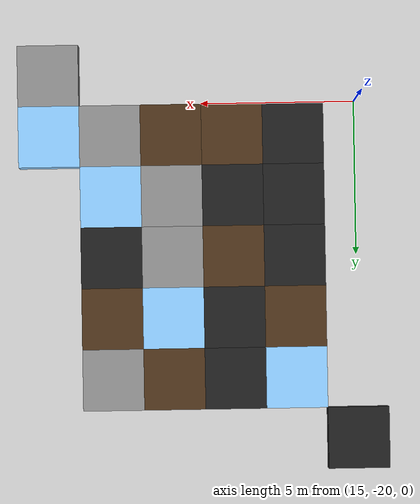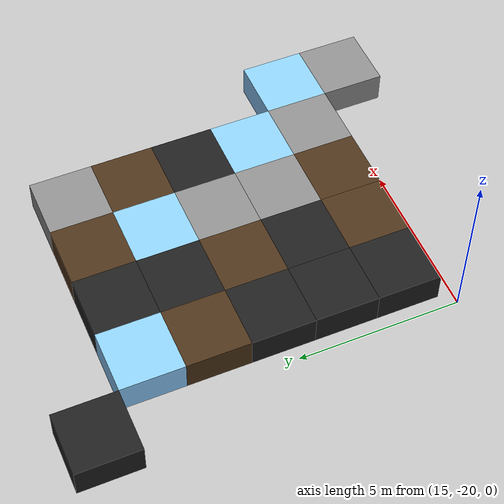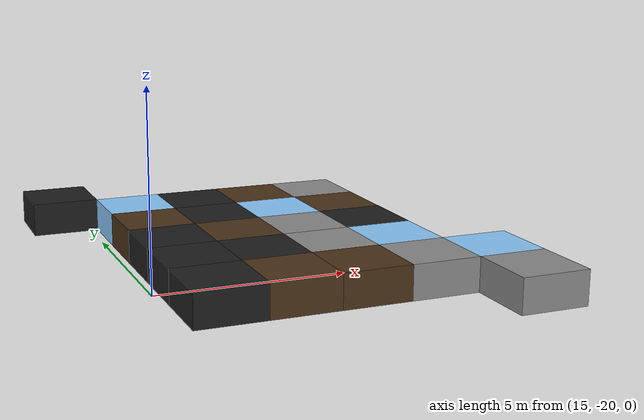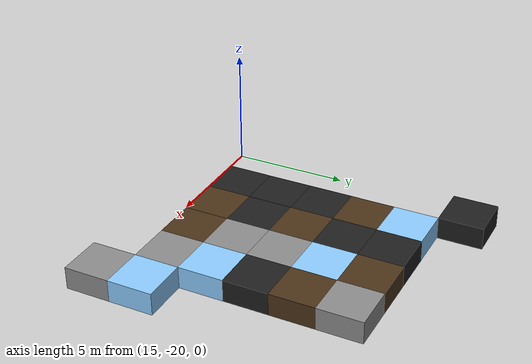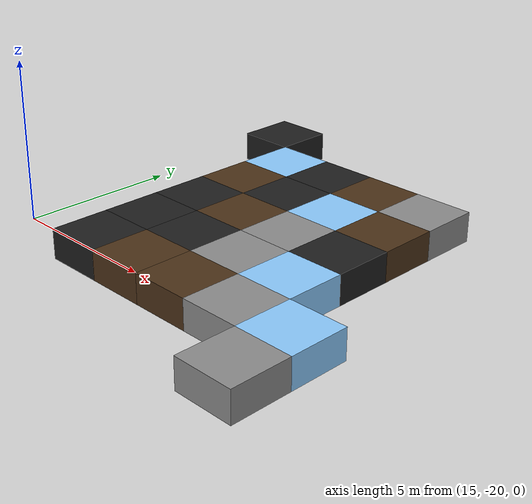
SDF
<sdf version="1.5">
 <world name="squares_example">
  <model name="tile_28_5">
   <static>true</static>
   <pose>25.000 -21.000 -0.500 0 0 0</pose>
   <link name="link">
    <collision name="col">
     <geometry><box><size>2.0 2.0 1.0</size></box></geometry>
     <surface>
      <friction>
       <ode><mu>0.8</mu><mu2>0.3</mu2><fdir1>1 0 0</fdir1><slip1>0.0</slip1><slip2>0.0</slip2></ode>
       <torsional>
        <coefficient>0.03</coefficient>
        <use_patch_radius>false</use_patch_radius>
        <surface_radius>0.12</surface_radius>
        <ode><slip>0.0</slip></ode>
       </torsional>
      </friction>
      <bounce><restitution_coefficient>0.0</restitution_coefficient><threshold>0.1</threshold></bounce>
      <contact>
       <ode><kp>10000000000.0</kp><kd>10000000.0</kd><max_vel>0.01</max_vel><min_depth>0.0</min_depth></ode>
      </contact>
     </surface>
    </collision>
    <visual name="visual">
     <geometry><box><size>2.0 2.0 1.0</size></box></geometry>
     <material>
      <diffuse>0.55 0.55 0.55 1</diffuse>
      <ambient>0 0 0 0</ambient>
      <specular>0 0 0 1</specular>
      <emissive>0 0 0 1</emissive>
     </material>
    </visual>
   </link>
  </model>
  <model name="tile_24_6">
   <static>true</static>
   <pose>17.000 -19.000 -0.500 0 0 0</pose>
   <link name="link">
    <collision name="col">
     <geometry><box><size>2.0 2.0 1.0</size></box></geometry>
     <surface>
      <friction>
       <ode><mu>0.4</mu><mu2>0.15</mu2><fdir1>1 0 0</fdir1><slip1>0.0</slip1><slip2>0.0</slip2></ode>
       <torsional>
        <coefficient>0.03</coefficient>
        <use_patch_radius>false</use_patch_radius>
        <surface_radius>0.12</surface_radius>
        <ode><slip>0.0</slip></ode>
       </torsional>
      </friction>
      <bounce><restitution_coefficient>0.0</restitution_coefficient><threshold>0.1</threshold></bounce>
      <contact>
       <ode><kp>1000000000.0</kp><kd>1000000.0</kd><max_vel>0.01</max_vel><min_depth>0.0</min_depth></ode>
      </contact>
     </surface>
    </collision>
    <visual name="visual">
     <geometry><box><size>2.0 2.0 1.0</size></box></geometry>
     <material>
      <diffuse>0.12 0.12 0.12 1</diffuse>
      <ambient>0 0 0 0</ambient>
      <specular>0 0 0 1</specular>
      <emissive>0 0 0 1</emissive>
     </material>
    </visual>
   </link>
  </model>
  <model name="tile_25_6">
   <static>true</static>
   <pose>19.000 -19.000 -0.500 0 0 0</pose>
   <link name="link">
    <collision name="col">
     <geometry><box><size>2.0 2.0 1.0</size></box></geometry>
     <surface>
      <friction>
       <ode><mu>0.6</mu><mu2>0.4</mu2><fdir1>1 0 0</fdir1><slip1>0.08</slip1><slip2>0.08</slip2></ode>
       <torsional>
        <coefficient>0.03</coefficient>
        <use_patch_radius>false</use_patch_radius>
        <surface_radius>0.12</surface_radius>
        <ode><slip>0.0</slip></ode>
       </torsional>
      </friction>
      <bounce><restitution_coefficient>0.0</restitution_coefficient><threshold>0.1</threshold></bounce>
      <contact>
       <ode><kp>1000000.0</kp><kd>10000.0</kd><max_vel>0.01</max_vel><min_depth>0.0</min_depth></ode>
      </contact>
     </surface>
    </collision>
    <visual name="visual">
     <geometry><box><size>2.0 2.0 1.0</size></box></geometry>
     <material>
      <diffuse>0.30 0.20 0.10 1</diffuse>
      <ambient>0 0 0 0</ambient>
      <specular>0 0 0 1</specular>
      <emissive>0 0 0 1</emissive>
     </material>
    </visual>
   </link>
  </model>
  <model name="tile_26_6">
   <static>true</static>
   <pose>21.000 -19.000 -0.500 0 0 0</pose>
   <link name="link">
    <collision name="col">
     <geometry><box><size>2.0 2.0 1.0</size></box></geometry>
     <surface>
      <friction>
       <ode><mu>0.6</mu><mu2>0.4</mu2><fdir1>1 0 0</fdir1><slip1>0.08</slip1><slip2>0.08</slip2></ode>
       <torsional>
        <coefficient>0.03</coefficient>
        <use_patch_radius>false</use_patch_radius>
        <surface_radius>0.12</surface_radius>
        <ode><slip>0.0</slip></ode>
       </torsional>
      </friction>
      <bounce><restitution_coefficient>0.0</restitution_coefficient><threshold>0.1</threshold></bounce>
      <contact>
       <ode><kp>1000000.0</kp><kd>10000.0</kd><max_vel>0.01</max_vel><min_depth>0.0</min_depth></ode>
      </contact>
     </surface>
    </collision>
    <visual name="visual">
     <geometry><box><size>2.0 2.0 1.0</size></box></geometry>
     <material>
      <diffuse>0.30 0.20 0.10 1</diffuse>
      <ambient>0 0 0 0</ambient>
      <specular>0 0 0 1</specular>
      <emissive>0 0 0 1</emissive>
     </material>
    </visual>
   </link>
  </model>
  <model name="tile_27_6">
   <static>true</static>
   <pose>23.000 -19.000 -0.500 0 0 0</pose>
   <link name="link">
    <collision name="col">
     <geometry><box><size>2.0 2.0 1.0</size></box></geometry>
     <surface>
      <friction>
       <ode><mu>0.8</mu><mu2>0.3</mu2><fdir1>1 0 0</fdir1><slip1>0.0</slip1><slip2>0.0</slip2></ode>
       <torsional>
        <coefficient>0.03</coefficient>
        <use_patch_radius>false</use_patch_radius>
        <surface_radius>0.12</surface_radius>
        <ode><slip>0.0</slip></ode>
       </torsional>
      </friction>
      <bounce><restitution_coefficient>0.0</restitution_coefficient><threshold>0.1</threshold></bounce>
      <contact>
       <ode><kp>10000000000.0</kp><kd>10000000.0</kd><max_vel>0.01</max_vel><min_depth>0.0</min_depth></ode>
      </contact>
     </surface>
    </collision>
    <visual name="visual">
     <geometry><box><size>2.0 2.0 1.0</size></box></geometry>
     <material>
      <diffuse>0.55 0.55 0.55 1</diffuse>
      <ambient>0 0 0 0</ambient>
      <specular>0 0 0 1</specular>
      <emissive>0 0 0 1</emissive>
     </material>
    </visual>
   </link>
  </model>
  <model name="tile_28_6">
   <static>true</static>
   <pose>25.000 -19.000 -0.500 0 0 0</pose>
   <link name="link">
    <collision name="col">
     <geometry><box><size>2.0 2.0 1.0</size></box></geometry>
     <surface>
      <friction>
       <ode><mu>0.03</mu><mu2>0.02</mu2><fdir1>1 0 0</fdir1><slip1>0.03</slip1><slip2>0.03</slip2></ode>
       <torsional>
        <coefficient>0.005</coefficient>
        <use_patch_radius>false</use_patch_radius>
        <surface_radius>0.12</surface_radius>
        <ode><slip>0.01</slip></ode>
       </torsional>
      </friction>
      <bounce><restitution_coefficient>0.0</restitution_coefficient><threshold>0.1</threshold></bounce>
      <contact>
       <ode><kp>10000000.0</kp><kd>1000.0</kd><max_vel>0.01</max_vel><min_depth>0.0</min_depth></ode>
      </contact>
     </surface>
    </collision>
    <visual name="visual">
     <geometry><box><size>2.0 2.0 1.0</size></box></geometry>
     <material>
      <diffuse>0.55 0.80 1.00 1</diffuse>
      <ambient>0 0 0 0</ambient>
      <specular>0 0 0 1</specular>
      <emissive>0 0 0 1</emissive>
     </material>
    </visual>
   </link>
  </model>
  <model name="tile_24_7">
   <static>true</static>
   <pose>17.000 -17.000 -0.500 0 0 0</pose>
   <link name="link">
    <collision name="col">
     <geometry><box><size>2.0 2.0 1.0</size></box></geometry>
     <surface>
      <friction>
       <ode><mu>0.4</mu><mu2>0.15</mu2><fdir1>1 0 0</fdir1><slip1>0.0</slip1><slip2>0.0</slip2></ode>
       <torsional>
        <coefficient>0.03</coefficient>
        <use_patch_radius>false</use_patch_radius>
        <surface_radius>0.12</surface_radius>
        <ode><slip>0.0</slip></ode>
       </torsional>
      </friction>
      <bounce><restitution_coefficient>0.0</restitution_coefficient><threshold>0.1</threshold></bounce>
      <contact>
       <ode><kp>1000000000.0</kp><kd>1000000.0</kd><max_vel>0.01</max_vel><min_depth>0.0</min_depth></ode>
      </contact>
     </surface>
    </collision>
    <visual name="visual">
     <geometry><box><size>2.0 2.0 1.0</size></box></geometry>
     <material>
      <diffuse>0.12 0.12 0.12 1</diffuse>
      <ambient>0 0 0 0</ambient>
      <specular>0 0 0 1</specular>
      <emissive>0 0 0 1</emissive>
     </material>
    </visual>
   </link>
  </model>
  <model name="tile_25_7">
   <static>true</static>
   <pose>19.000 -17.000 -0.500 0 0 0</pose>
   <link name="link">
    <collision name="col">
     <geometry><box><size>2.0 2.0 1.0</size></box></geometry>
     <surface>
      <friction>
       <ode><mu>0.4</mu><mu2>0.15</mu2><fdir1>1 0 0</fdir1><slip1>0.0</slip1><slip2>0.0</slip2></ode>
       <torsional>
        <coefficient>0.03</coefficient>
        <use_patch_radius>false</use_patch_radius>
        <surface_radius>0.12</surface_radius>
        <ode><slip>0.0</slip></ode>
       </torsional>
      </friction>
      <bounce><restitution_coefficient>0.0</restitution_coefficient><threshold>0.1</threshold></bounce>
      <contact>
       <ode><kp>1000000000.0</kp><kd>1000000.0</kd><max_vel>0.01</max_vel><min_depth>0.0</min_depth></ode>
      </contact>
     </surface>
    </collision>
    <visual name="visual">
     <geometry><box><size>2.0 2.0 1.0</size></box></geometry>
     <material>
      <diffuse>0.12 0.12 0.12 1</diffuse>
      <ambient>0 0 0 0</ambient>
      <specular>0 0 0 1</specular>
      <emissive>0 0 0 1</emissive>
     </material>
    </visual>
   </link>
  </model>
  <model name="tile_26_7">
   <static>true</static>
   <pose>21.000 -17.000 -0.500 0 0 0</pose>
   <link name="link">
    <collision name="col">
     <geometry><box><size>2.0 2.0 1.0</size></box></geometry>
     <surface>
      <friction>
       <ode><mu>0.8</mu><mu2>0.3</mu2><fdir1>1 0 0</fdir1><slip1>0.0</slip1><slip2>0.0</slip2></ode>
       <torsional>
        <coefficient>0.03</coefficient>
        <use_patch_radius>false</use_patch_radius>
        <surface_radius>0.12</surface_radius>
        <ode><slip>0.0</slip></ode>
       </torsional>
      </friction>
      <bounce><restitution_coefficient>0.0</restitution_coefficient><threshold>0.1</threshold></bounce>
      <contact>
       <ode><kp>10000000000.0</kp><kd>10000000.0</kd><max_vel>0.01</max_vel><min_depth>0.0</min_depth></ode>
      </contact>
     </surface>
    </collision>
    <visual name="visual">
     <geometry><box><size>2.0 2.0 1.0</size></box></geometry>
     <material>
      <diffuse>0.55 0.55 0.55 1</diffuse>
      <ambient>0 0 0 0</ambient>
      <specular>0 0 0 1</specular>
      <emissive>0 0 0 1</emissive>
     </material>
    </visual>
   </link>
  </model>
  <model name="tile_27_7">
   <static>true</static>
   <pose>23.000 -17.000 -0.500 0 0 0</pose>
   <link name="link">
    <collision name="col">
     <geometry><box><size>2.0 2.0 1.0</size></box></geometry>
     <surface>
      <friction>
       <ode><mu>0.03</mu><mu2>0.02</mu2><fdir1>1 0 0</fdir1><slip1>0.03</slip1><slip2>0.03</slip2></ode>
       <torsional>
        <coefficient>0.005</coefficient>
        <use_patch_radius>false</use_patch_radius>
        <surface_radius>0.12</surface_radius>
        <ode><slip>0.01</slip></ode>
       </torsional>
      </friction>
      <bounce><restitution_coefficient>0.0</restitution_coefficient><threshold>0.1</threshold></bounce>
      <contact>
       <ode><kp>10000000.0</kp><kd>1000.0</kd><max_vel>0.01</max_vel><min_depth>0.0</min_depth></ode>
      </contact>
     </surface>
    </collision>
    <visual name="visual">
     <geometry><box><size>2.0 2.0 1.0</size></box></geometry>
     <material>
      <diffuse>0.55 0.80 1.00 1</diffuse>
      <ambient>0 0 0 0</ambient>
      <specular>0 0 0 1</specular>
      <emissive>0 0 0 1</emissive>
     </material>
    </visual>
   </link>
  </model>
  <model name="tile_24_8">
   <static>true</static>
   <pose>17.000 -15.000 -0.500 0 0 0</pose>
   <link name="link">
    <collision name="col">
     <geometry><box><size>2.0 2.0 1.0</size></box></geometry>
     <surface>
      <friction>
       <ode><mu>0.4</mu><mu2>0.15</mu2><fdir1>1 0 0</fdir1><slip1>0.0</slip1><slip2>0.0</slip2></ode>
       <torsional>
        <coefficient>0.03</coefficient>
        <use_patch_radius>false</use_patch_radius>
        <surface_radius>0.12</surface_radius>
        <ode><slip>0.0</slip></ode>
       </torsional>
      </friction>
      <bounce><restitution_coefficient>0.0</restitution_coefficient><threshold>0.1</threshold></bounce>
      <contact>
       <ode><kp>1000000000.0</kp><kd>1000000.0</kd><max_vel>0.01</max_vel><min_depth>0.0</min_depth></ode>
      </contact>
     </surface>
    </collision>
    <visual name="visual">
     <geometry><box><size>2.0 2.0 1.0</size></box></geometry>
     <material>
      <diffuse>0.12 0.12 0.12 1</diffuse>
      <ambient>0 0 0 0</ambient>
      <specular>0 0 0 1</specular>
      <emissive>0 0 0 1</emissive>
     </material>
    </visual>
   </link>
  </model>
  <model name="tile_25_8">
   <static>true</static>
   <pose>19.000 -15.000 -0.500 0 0 0</pose>
   <link name="link">
    <collision name="col">
     <geometry><box><size>2.0 2.0 1.0</size></box></geometry>
     <surface>
      <friction>
       <ode><mu>0.6</mu><mu2>0.4</mu2><fdir1>1 0 0</fdir1><slip1>0.08</slip1><slip2>0.08</slip2></ode>
       <torsional>
        <coefficient>0.03</coefficient>
        <use_patch_radius>false</use_patch_radius>
        <surface_radius>0.12</surface_radius>
        <ode><slip>0.0</slip></ode>
       </torsional>
      </friction>
      <bounce><restitution_coefficient>0.0</restitution_coefficient><threshold>0.1</threshold></bounce>
      <contact>
       <ode><kp>1000000.0</kp><kd>10000.0</kd><max_vel>0.01</max_vel><min_depth>0.0</min_depth></ode>
      </contact>
     </surface>
    </collision>
    <visual name="visual">
     <geometry><box><size>2.0 2.0 1.0</size></box></geometry>
     <material>
      <diffuse>0.30 0.20 0.10 1</diffuse>
      <ambient>0 0 0 0</ambient>
      <specular>0 0 0 1</specular>
      <emissive>0 0 0 1</emissive>
     </material>
    </visual>
   </link>
  </model>
  <model name="tile_26_8">
   <static>true</static>
   <pose>21.000 -15.000 -0.500 0 0 0</pose>
   <link name="link">
    <collision name="col">
     <geometry><box><size>2.0 2.0 1.0</size></box></geometry>
     <surface>
      <friction>
       <ode><mu>0.8</mu><mu2>0.3</mu2><fdir1>1 0 0</fdir1><slip1>0.0</slip1><slip2>0.0</slip2></ode>
       <torsional>
        <coefficient>0.03</coefficient>
        <use_patch_radius>false</use_patch_radius>
        <surface_radius>0.12</surface_radius>
        <ode><slip>0.0</slip></ode>
       </torsional>
      </friction>
      <bounce><restitution_coefficient>0.0</restitution_coefficient><threshold>0.1</threshold></bounce>
      <contact>
       <ode><kp>10000000000.0</kp><kd>10000000.0</kd><max_vel>0.01</max_vel><min_depth>0.0</min_depth></ode>
      </contact>
     </surface>
    </collision>
    <visual name="visual">
     <geometry><box><size>2.0 2.0 1.0</size></box></geometry>
     <material>
      <diffuse>0.55 0.55 0.55 1</diffuse>
      <ambient>0 0 0 0</ambient>
      <specular>0 0 0 1</specular>
      <emissive>0 0 0 1</emissive>
     </material>
    </visual>
   </link>
  </model>
  <model name="tile_27_8">
   <static>true</static>
   <pose>23.000 -15.000 -0.500 0 0 0</pose>
   <link name="link">
    <collision name="col">
     <geometry><box><size>2.0 2.0 1.0</size></box></geometry>
     <surface>
      <friction>
       <ode><mu>0.4</mu><mu2>0.15</mu2><fdir1>1 0 0</fdir1><slip1>0.0</slip1><slip2>0.0</slip2></ode>
       <torsional>
        <coefficient>0.03</coefficient>
        <use_patch_radius>false</use_patch_radius>
        <surface_radius>0.12</surface_radius>
        <ode><slip>0.0</slip></ode>
       </torsional>
      </friction>
      <bounce><restitution_coefficient>0.0</restitution_coefficient><threshold>0.1</threshold></bounce>
      <contact>
       <ode><kp>1000000000.0</kp><kd>1000000.0</kd><max_vel>0.01</max_vel><min_depth>0.0</min_depth></ode>
      </contact>
     </surface>
    </collision>
    <visual name="visual">
     <geometry><box><size>2.0 2.0 1.0</size></box></geometry>
     <material>
      <diffuse>0.12 0.12 0.12 1</diffuse>
      <ambient>0 0 0 0</ambient>
      <specular>0 0 0 1</specular>
      <emissive>0 0 0 1</emissive>
     </material>
    </visual>
   </link>
  </model>
  <model name="tile_24_9">
   <static>true</static>
   <pose>17.000 -13.000 -0.500 0 0 0</pose>
   <link name="link">
    <collision name="col">
     <geometry><box><size>2.0 2.0 1.0</size></box></geometry>
     <surface>
      <friction>
       <ode><mu>0.6</mu><mu2>0.4</mu2><fdir1>1 0 0</fdir1><slip1>0.08</slip1><slip2>0.08</slip2></ode>
       <torsional>
        <coefficient>0.03</coefficient>
        <use_patch_radius>false</use_patch_radius>
        <surface_radius>0.12</surface_radius>
        <ode><slip>0.0</slip></ode>
       </torsional>
      </friction>
      <bounce><restitution_coefficient>0.0</restitution_coefficient><threshold>0.1</threshold></bounce>
      <contact>
       <ode><kp>1000000.0</kp><kd>10000.0</kd><max_vel>0.01</max_vel><min_depth>0.0</min_depth></ode>
      </contact>
     </surface>
    </collision>
    <visual name="visual">
     <geometry><box><size>2.0 2.0 1.0</size></box></geometry>
     <material>
      <diffuse>0.30 0.20 0.10 1</diffuse>
      <ambient>0 0 0 0</ambient>
      <specular>0 0 0 1</specular>
      <emissive>0 0 0 1</emissive>
     </material>
    </visual>
   </link>
  </model>
  <model name="tile_25_9">
   <static>true</static>
   <pose>19.000 -13.000 -0.500 0 0 0</pose>
   <link name="link">
    <collision name="col">
     <geometry><box><size>2.0 2.0 1.0</size></box></geometry>
     <surface>
      <friction>
       <ode><mu>0.4</mu><mu2>0.15</mu2><fdir1>1 0 0</fdir1><slip1>0.0</slip1><slip2>0.0</slip2></ode>
       <torsional>
        <coefficient>0.03</coefficient>
        <use_patch_radius>false</use_patch_radius>
        <surface_radius>0.12</surface_radius>
        <ode><slip>0.0</slip></ode>
       </torsional>
      </friction>
      <bounce><restitution_coefficient>0.0</restitution_coefficient><threshold>0.1</threshold></bounce>
      <contact>
       <ode><kp>1000000000.0</kp><kd>1000000.0</kd><max_vel>0.01</max_vel><min_depth>0.0</min_depth></ode>
      </contact>
     </surface>
    </collision>
    <visual name="visual">
     <geometry><box><size>2.0 2.0 1.0</size></box></geometry>
     <material>
      <diffuse>0.12 0.12 0.12 1</diffuse>
      <ambient>0 0 0 0</ambient>
      <specular>0 0 0 1</specular>
      <emissive>0 0 0 1</emissive>
     </material>
    </visual>
   </link>
  </model>
  <model name="tile_26_9">
   <static>true</static>
   <pose>21.000 -13.000 -0.500 0 0 0</pose>
   <link name="link">
    <collision name="col">
     <geometry><box><size>2.0 2.0 1.0</size></box></geometry>
     <surface>
      <friction>
       <ode><mu>0.03</mu><mu2>0.02</mu2><fdir1>1 0 0</fdir1><slip1>0.03</slip1><slip2>0.03</slip2></ode>
       <torsional>
        <coefficient>0.005</coefficient>
        <use_patch_radius>false</use_patch_radius>
        <surface_radius>0.12</surface_radius>
        <ode><slip>0.01</slip></ode>
       </torsional>
      </friction>
      <bounce><restitution_coefficient>0.0</restitution_coefficient><threshold>0.1</threshold></bounce>
      <contact>
       <ode><kp>10000000.0</kp><kd>1000.0</kd><max_vel>0.01</max_vel><min_depth>0.0</min_depth></ode>
      </contact>
     </surface>
    </collision>
    <visual name="visual">
     <geometry><box><size>2.0 2.0 1.0</size></box></geometry>
     <material>
      <diffuse>0.55 0.80 1.00 1</diffuse>
      <ambient>0 0 0 0</ambient>
      <specular>0 0 0 1</specular>
      <emissive>0 0 0 1</emissive>
     </material>
    </visual>
   </link>
  </model>
  <model name="tile_27_9">
   <static>true</static>
   <pose>23.000 -13.000 -0.500 0 0 0</pose>
   <link name="link">
    <collision name="col">
     <geometry><box><size>2.0 2.0 1.0</size></box></geometry>
     <surface>
      <friction>
       <ode><mu>0.6</mu><mu2>0.4</mu2><fdir1>1 0 0</fdir1><slip1>0.08</slip1><slip2>0.08</slip2></ode>
       <torsional>
        <coefficient>0.03</coefficient>
        <use_patch_radius>false</use_patch_radius>
        <surface_radius>0.12</surface_radius>
        <ode><slip>0.0</slip></ode>
       </torsional>
      </friction>
      <bounce><restitution_coefficient>0.0</restitution_coefficient><threshold>0.1</threshold></bounce>
      <contact>
       <ode><kp>1000000.0</kp><kd>10000.0</kd><max_vel>0.01</max_vel><min_depth>0.0</min_depth></ode>
      </contact>
     </surface>
    </collision>
    <visual name="visual">
     <geometry><box><size>2.0 2.0 1.0</size></box></geometry>
     <material>
      <diffuse>0.30 0.20 0.10 1</diffuse>
      <ambient>0 0 0 0</ambient>
      <specular>0 0 0 1</specular>
      <emissive>0 0 0 1</emissive>
     </material>
    </visual>
   </link>
  </model>
  <model name="tile_24_10">
   <static>true</static>
   <pose>17.000 -11.000 -0.500 0 0 0</pose>
   <link name="link">
    <collision name="col">
     <geometry><box><size>2.0 2.0 1.0</size></box></geometry>
     <surface>
      <friction>
       <ode><mu>0.03</mu><mu2>0.02</mu2><fdir1>1 0 0</fdir1><slip1>0.03</slip1><slip2>0.03</slip2></ode>
       <torsional>
        <coefficient>0.005</coefficient>
        <use_patch_radius>false</use_patch_radius>
        <surface_radius>0.12</surface_radius>
        <ode><slip>0.01</slip></ode>
       </torsional>
      </friction>
      <bounce><restitution_coefficient>0.0</restitution_coefficient><threshold>0.1</threshold></bounce>
      <contact>
       <ode><kp>10000000.0</kp><kd>1000.0</kd><max_vel>0.01</max_vel><min_depth>0.0</min_depth></ode>
      </contact>
     </surface>
    </collision>
    <visual name="visual">
     <geometry><box><size>2.0 2.0 1.0</size></box></geometry>
     <material>
      <diffuse>0.55 0.80 1.00 1</diffuse>
      <ambient>0 0 0 0</ambient>
      <specular>0 0 0 1</specular>
      <emissive>0 0 0 1</emissive>
     </material>
    </visual>
   </link>
  </model>
  <model name="tile_25_10">
   <static>true</static>
   <pose>19.000 -11.000 -0.500 0 0 0</pose>
   <link name="link">
    <collision name="col">
     <geometry><box><size>2.0 2.0 1.0</size></box></geometry>
     <surface>
      <friction>
       <ode><mu>0.4</mu><mu2>0.15</mu2><fdir1>1 0 0</fdir1><slip1>0.0</slip1><slip2>0.0</slip2></ode>
       <torsional>
        <coefficient>0.03</coefficient>
        <use_patch_radius>false</use_patch_radius>
        <surface_radius>0.12</surface_radius>
        <ode><slip>0.0</slip></ode>
       </torsional>
      </friction>
      <bounce><restitution_coefficient>0.0</restitution_coefficient><threshold>0.1</threshold></bounce>
      <contact>
       <ode><kp>1000000000.0</kp><kd>1000000.0</kd><max_vel>0.01</max_vel><min_depth>0.0</min_depth></ode>
      </contact>
     </surface>
    </collision>
    <visual name="visual">
     <geometry><box><size>2.0 2.0 1.0</size></box></geometry>
     <material>
      <diffuse>0.12 0.12 0.12 1</diffuse>
      <ambient>0 0 0 0</ambient>
      <specular>0 0 0 1</specular>
      <emissive>0 0 0 1</emissive>
     </material>
    </visual>
   </link>
  </model>
  <model name="tile_26_10">
   <static>true</static>
   <pose>21.000 -11.000 -0.500 0 0 0</pose>
   <link name="link">
    <collision name="col">
     <geometry><box><size>2.0 2.0 1.0</size></box></geometry>
     <surface>
      <friction>
       <ode><mu>0.6</mu><mu2>0.4</mu2><fdir1>1 0 0</fdir1><slip1>0.08</slip1><slip2>0.08</slip2></ode>
       <torsional>
        <coefficient>0.03</coefficient>
        <use_patch_radius>false</use_patch_radius>
        <surface_radius>0.12</surface_radius>
        <ode><slip>0.0</slip></ode>
       </torsional>
      </friction>
      <bounce><restitution_coefficient>0.0</restitution_coefficient><threshold>0.1</threshold></bounce>
      <contact>
       <ode><kp>1000000.0</kp><kd>10000.0</kd><max_vel>0.01</max_vel><min_depth>0.0</min_depth></ode>
      </contact>
     </surface>
    </collision>
    <visual name="visual">
     <geometry><box><size>2.0 2.0 1.0</size></box></geometry>
     <material>
      <diffuse>0.30 0.20 0.10 1</diffuse>
      <ambient>0 0 0 0</ambient>
      <specular>0 0 0 1</specular>
      <emissive>0 0 0 1</emissive>
     </material>
    </visual>
   </link>
  </model>
  <model name="tile_27_10">
   <static>true</static>
   <pose>23.000 -11.000 -0.500 0 0 0</pose>
   <link name="link">
    <collision name="col">
     <geometry><box><size>2.0 2.0 1.0</size></box></geometry>
     <surface>
      <friction>
       <ode><mu>0.8</mu><mu2>0.3</mu2><fdir1>1 0 0</fdir1><slip1>0.0</slip1><slip2>0.0</slip2></ode>
       <torsional>
        <coefficient>0.03</coefficient>
        <use_patch_radius>false</use_patch_radius>
        <surface_radius>0.12</surface_radius>
        <ode><slip>0.0</slip></ode>
       </torsional>
      </friction>
      <bounce><restitution_coefficient>0.0</restitution_coefficient><threshold>0.1</threshold></bounce>
      <contact>
       <ode><kp>10000000000.0</kp><kd>10000000.0</kd><max_vel>0.01</max_vel><min_depth>0.0</min_depth></ode>
      </contact>
     </surface>
    </collision>
    <visual name="visual">
     <geometry><box><size>2.0 2.0 1.0</size></box></geometry>
     <material>
      <diffuse>0.55 0.55 0.55 1</diffuse>
      <ambient>0 0 0 0</ambient>
      <specular>0 0 0 1</specular>
      <emissive>0 0 0 1</emissive>
     </material>
    </visual>
   </link>
  </model>
  <model name="tile_23_11">
   <static>true</static>
   <pose>15.000 -9.000 -0.500 0 0 0</pose>
   <link name="link">
    <collision name="col">
     <geometry><box><size>2.0 2.0 1.0</size></box></geometry>
     <surface>
      <friction>
       <ode><mu>0.4</mu><mu2>0.15</mu2><fdir1>1 0 0</fdir1><slip1>0.0</slip1><slip2>0.0</slip2></ode>
       <torsional>
        <coefficient>0.03</coefficient>
        <use_patch_radius>false</use_patch_radius>
        <surface_radius>0.12</surface_radius>
        <ode><slip>0.0</slip></ode>
       </torsional>
      </friction>
      <bounce><restitution_coefficient>0.0</restitution_coefficient><threshold>0.1</threshold></bounce>
      <contact>
       <ode><kp>1000000000.0</kp><kd>1000000.0</kd><max_vel>0.01</max_vel><min_depth>0.0</min_depth></ode>
      </contact>
     </surface>
    </collision>
    <visual name="visual">
     <geometry><box><size>2.0 2.0 1.0</size></box></geometry>
     <material>
      <diffuse>0.12 0.12 0.12 1</diffuse>
      <ambient>0 0 0 0</ambient>
      <specular>0 0 0 1</specular>
      <emissive>0 0 0 1</emissive>
     </material>
    </visual>
   </link>
  </model>
 </world>
</sdf>
